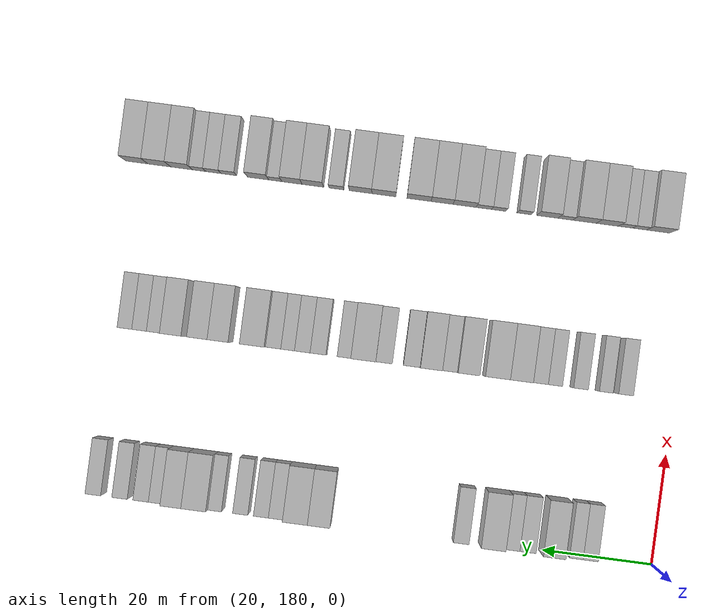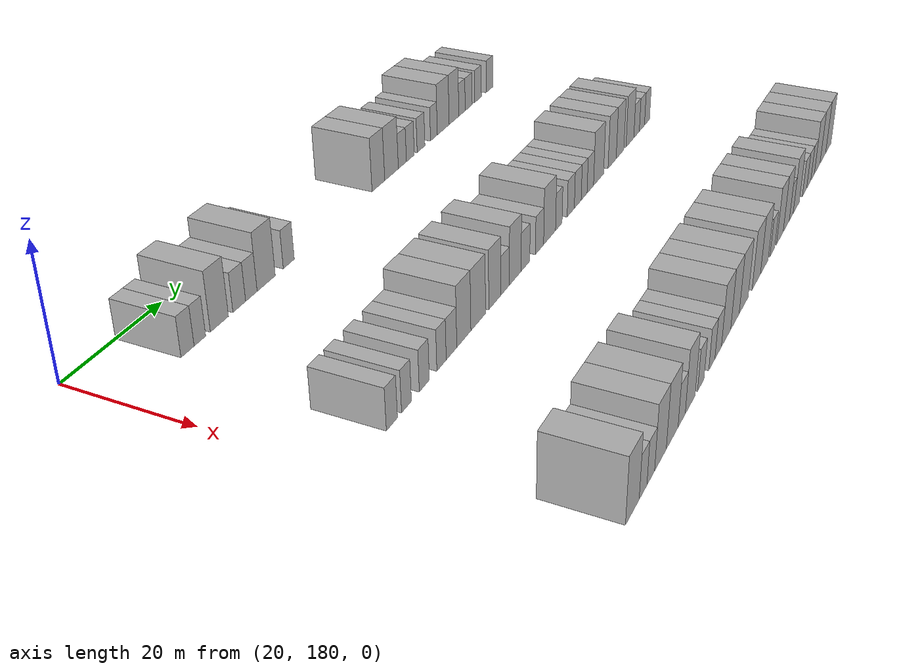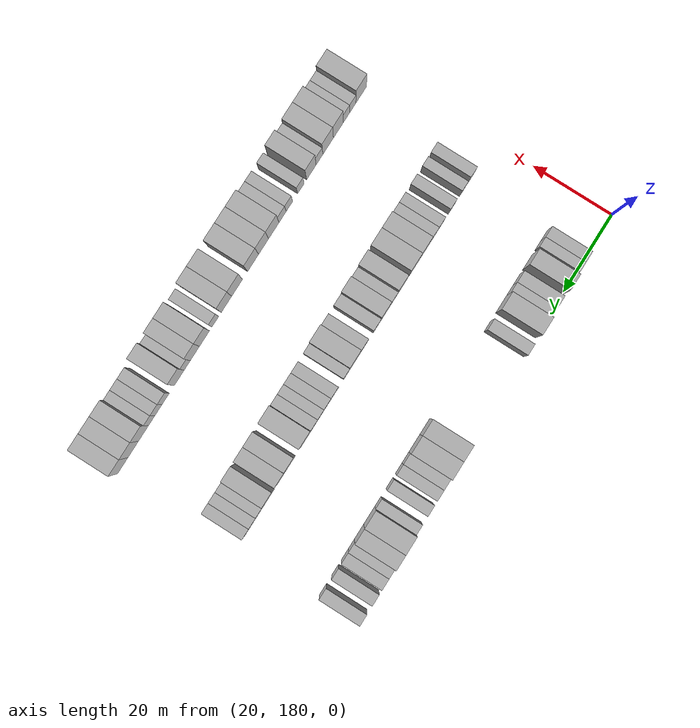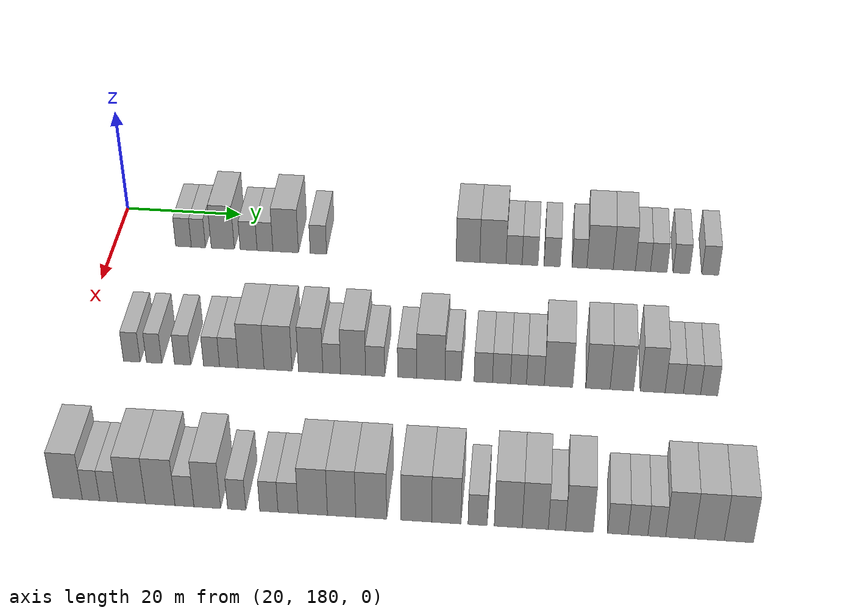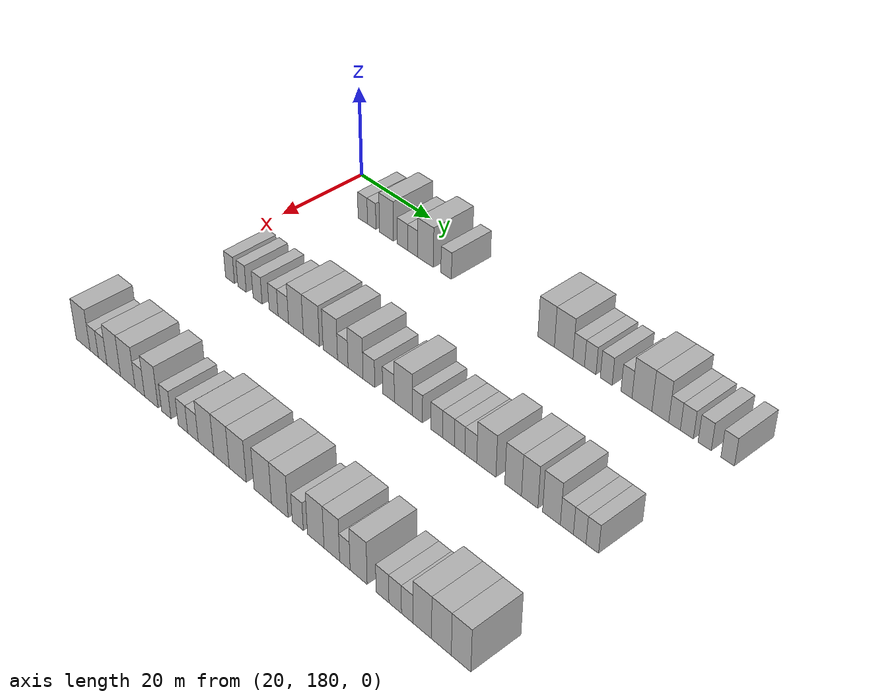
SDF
<sdf version="1.6">
 <world name="default">
  <model name="building_123">
   <static>1</static>
   <pose>25.0000 191.8621 0 0.000000 0.000000 0.000000</pose>
   <link name="link">
    <pose>0 0 3.00 0 0 0</pose>
    <collision name="collision"><geometry><box><size>10.0000 2.7082 6.0000</size></box></geometry></collision>
    <visual name="visual">
     <cast_shadows>0</cast_shadows>
     <geometry><box><size>10.0000 2.7082 6.0000</size></box></geometry>
     <material>
      <script>
       <uri>model://HANNAS_wall/materials/scripts</uri>
       <uri>model://HANNAS_wall/materials/textures</uri>
       <name>vrc/HANNAS_wall</name>
      </script>
     </material>
    </visual>
   </link>
  </model>
  <model name="building_124">
   <static>1</static>
   <pose>25.0000 194.4350 0 0.000000 0.000000 0.000000</pose>
   <link name="link">
    <pose>0 0 3.00 0 0 0</pose>
    <collision name="collision"><geometry><box><size>10.0000 2.4375 6.0000</size></box></geometry></collision>
    <visual name="visual">
     <cast_shadows>0</cast_shadows>
     <geometry><box><size>10.0000 2.4375 6.0000</size></box></geometry>
     <material>
      <script>
       <uri>model://HANNAS_wall/materials/scripts</uri>
       <uri>model://HANNAS_wall/materials/textures</uri>
       <name>vrc/HANNAS_wall</name>
      </script>
     </material>
    </visual>
   </link>
  </model>
  <model name="building_125">
   <static>1</static>
   <pose>25.0000 198.6435 0 0.000000 0.000000 0.000000</pose>
   <link name="link">
    <pose>0 0 4.50 0 0 0</pose>
    <collision name="collision"><geometry><box><size>10.0000 3.9794 9.0000</size></box></geometry></collision>
    <visual name="visual">
     <cast_shadows>0</cast_shadows>
     <geometry><box><size>10.0000 3.9794 9.0000</size></box></geometry>
     <material>
      <script>
       <uri>model://HANNAS_wall/materials/scripts</uri>
       <uri>model://HANNAS_wall/materials/textures</uri>
       <name>vrc/HANNAS_wall</name>
      </script>
     </material>
    </visual>
   </link>
  </model>
  <model name="building_126">
   <static>1</static>
   <pose>25.0000 203.0885 0 0.000000 0.000000 0.000000</pose>
   <link name="link">
    <pose>0 0 3.00 0 0 0</pose>
    <collision name="collision"><geometry><box><size>10.0000 2.9107 6.0000</size></box></geometry></collision>
    <visual name="visual">
     <cast_shadows>0</cast_shadows>
     <geometry><box><size>10.0000 2.9107 6.0000</size></box></geometry>
     <material>
      <script>
       <uri>model://HANNAS_wall/materials/scripts</uri>
       <uri>model://HANNAS_wall/materials/textures</uri>
       <name>vrc/HANNAS_wall</name>
      </script>
     </material>
    </visual>
   </link>
  </model>
  <model name="building_127">
   <static>1</static>
   <pose>25.0000 205.8991 0 0.000000 0.000000 0.000000</pose>
   <link name="link">
    <pose>0 0 3.00 0 0 0</pose>
    <collision name="collision"><geometry><box><size>10.0000 2.7104 6.0000</size></box></geometry></collision>
    <visual name="visual">
     <cast_shadows>0</cast_shadows>
     <geometry><box><size>10.0000 2.7104 6.0000</size></box></geometry>
     <material>
      <script>
       <uri>model://HANNAS_wall/materials/scripts</uri>
       <uri>model://HANNAS_wall/materials/textures</uri>
       <name>vrc/HANNAS_wall</name>
      </script>
     </material>
    </visual>
   </link>
  </model>
  <model name="building_128">
   <static>1</static>
   <pose>25.0000 209.4507 0 0.000000 0.000000 0.000000</pose>
   <link name="link">
    <pose>0 0 4.50 0 0 0</pose>
    <collision name="collision"><geometry><box><size>10.0000 4.3928 9.0000</size></box></geometry></collision>
    <visual name="visual">
     <cast_shadows>0</cast_shadows>
     <geometry><box><size>10.0000 4.3928 9.0000</size></box></geometry>
     <material>
      <script>
       <uri>model://HANNAS_wall/materials/scripts</uri>
       <uri>model://HANNAS_wall/materials/textures</uri>
       <name>vrc/HANNAS_wall</name>
      </script>
     </material>
    </visual>
   </link>
  </model>
  <model name="building_129">
   <static>1</static>
   <pose>25.0000 215.0485 0 0.000000 0.000000 0.000000</pose>
   <link name="link">
    <pose>0 0 3.00 0 0 0</pose>
    <collision name="collision"><geometry><box><size>10.0000 2.8028 6.0000</size></box></geometry></collision>
    <visual name="visual">
     <cast_shadows>0</cast_shadows>
     <geometry><box><size>10.0000 2.8028 6.0000</size></box></geometry>
     <material>
      <script>
       <uri>model://HANNAS_wall/materials/scripts</uri>
       <uri>model://HANNAS_wall/materials/textures</uri>
       <name>vrc/HANNAS_wall</name>
      </script>
     </material>
    </visual>
   </link>
  </model>
  <model name="building_130">
   <static>1</static>
   <pose>25.0000 240.4593 0 0.000000 0.000000 0.000000</pose>
   <link name="link">
    <pose>0 0 4.50 0 0 0</pose>
    <collision name="collision"><geometry><box><size>10.0000 4.0063 9.0000</size></box></geometry></collision>
    <visual name="visual">
     <cast_shadows>0</cast_shadows>
     <geometry><box><size>10.0000 4.0063 9.0000</size></box></geometry>
     <material>
      <script>
       <uri>model://HANNAS_wall/materials/scripts</uri>
       <uri>model://HANNAS_wall/materials/textures</uri>
       <name>vrc/HANNAS_wall</name>
      </script>
     </material>
    </visual>
   </link>
  </model>
  <model name="building_131">
   <static>1</static>
   <pose>25.0000 244.6759 0 0.000000 0.000000 0.000000</pose>
   <link name="link">
    <pose>0 0 4.50 0 0 0</pose>
    <collision name="collision"><geometry><box><size>10.0000 4.4270 9.0000</size></box></geometry></collision>
    <visual name="visual">
     <cast_shadows>0</cast_shadows>
     <geometry><box><size>10.0000 4.4270 9.0000</size></box></geometry>
     <material>
      <script>
       <uri>model://HANNAS_wall/materials/scripts</uri>
       <uri>model://HANNAS_wall/materials/textures</uri>
       <name>vrc/HANNAS_wall</name>
      </script>
     </material>
    </visual>
   </link>
  </model>
  <model name="building_132">
   <static>1</static>
   <pose>25.0000 248.2359 0 0.000000 0.000000 0.000000</pose>
   <link name="link">
    <pose>0 0 3.00 0 0 0</pose>
    <collision name="collision"><geometry><box><size>10.0000 2.6929 6.0000</size></box></geometry></collision>
    <visual name="visual">
     <cast_shadows>0</cast_shadows>
     <geometry><box><size>10.0000 2.6929 6.0000</size></box></geometry>
     <material>
      <script>
       <uri>model://HANNAS_wall/materials/scripts</uri>
       <uri>model://HANNAS_wall/materials/textures</uri>
       <name>vrc/HANNAS_wall</name>
      </script>
     </material>
    </visual>
   </link>
  </model>
  <model name="building_133">
   <static>1</static>
   <pose>25.0000 250.9213 0 0.000000 0.000000 0.000000</pose>
   <link name="link">
    <pose>0 0 3.00 0 0 0</pose>
    <collision name="collision"><geometry><box><size>10.0000 2.6780 6.0000</size></box></geometry></collision>
    <visual name="visual">
     <cast_shadows>0</cast_shadows>
     <geometry><box><size>10.0000 2.6780 6.0000</size></box></geometry>
     <material>
      <script>
       <uri>model://HANNAS_wall/materials/scripts</uri>
       <uri>model://HANNAS_wall/materials/textures</uri>
       <name>vrc/HANNAS_wall</name>
      </script>
     </material>
    </visual>
   </link>
  </model>
  <model name="building_134">
   <static>1</static>
   <pose>25.0000 254.6172 0 0.000000 0.000000 0.000000</pose>
   <link name="link">
    <pose>0 0 3.00 0 0 0</pose>
    <collision name="collision"><geometry><box><size>10.0000 2.7138 6.0000</size></box></geometry></collision>
    <visual name="visual">
     <cast_shadows>0</cast_shadows>
     <geometry><box><size>10.0000 2.7138 6.0000</size></box></geometry>
     <material>
      <script>
       <uri>model://HANNAS_wall/materials/scripts</uri>
       <uri>model://HANNAS_wall/materials/textures</uri>
       <name>vrc/HANNAS_wall</name>
      </script>
     </material>
    </visual>
   </link>
  </model>
  <model name="building_135">
   <static>1</static>
   <pose>25.0000 259.2139 0 0.000000 0.000000 0.000000</pose>
   <link name="link">
    <pose>0 0 3.00 0 0 0</pose>
    <collision name="collision"><geometry><box><size>10.0000 2.4797 6.0000</size></box></geometry></collision>
    <visual name="visual">
     <cast_shadows>0</cast_shadows>
     <geometry><box><size>10.0000 2.4797 6.0000</size></box></geometry>
     <material>
      <script>
       <uri>model://HANNAS_wall/materials/scripts</uri>
       <uri>model://HANNAS_wall/materials/textures</uri>
       <name>vrc/HANNAS_wall</name>
      </script>
     </material>
    </visual>
   </link>
  </model>
  <model name="building_136">
   <static>1</static>
   <pose>25.0000 262.6553 0 0.000000 0.000000 0.000000</pose>
   <link name="link">
    <pose>0 0 4.50 0 0 0</pose>
    <collision name="collision"><geometry><box><size>10.0000 4.4030 9.0000</size></box></geometry></collision>
    <visual name="visual">
     <cast_shadows>0</cast_shadows>
     <geometry><box><size>10.0000 4.4030 9.0000</size></box></geometry>
     <material>
      <script>
       <uri>model://HANNAS_wall/materials/scripts</uri>
       <uri>model://HANNAS_wall/materials/textures</uri>
       <name>vrc/HANNAS_wall</name>
      </script>
     </material>
    </visual>
   </link>
  </model>
  <model name="building_137">
   <static>1</static>
   <pose>25.0000 266.7022 0 0.000000 0.000000 0.000000</pose>
   <link name="link">
    <pose>0 0 4.50 0 0 0</pose>
    <collision name="collision"><geometry><box><size>10.0000 3.6909 9.0000</size></box></geometry></collision>
    <visual name="visual">
     <cast_shadows>0</cast_shadows>
     <geometry><box><size>10.0000 3.6909 9.0000</size></box></geometry>
     <material>
      <script>
       <uri>model://HANNAS_wall/materials/scripts</uri>
       <uri>model://HANNAS_wall/materials/textures</uri>
       <name>vrc/HANNAS_wall</name>
      </script>
     </material>
    </visual>
   </link>
  </model>
  <model name="building_138">
   <static>1</static>
   <pose>25.0000 269.8038 0 0.000000 0.000000 0.000000</pose>
   <link name="link">
    <pose>0 0 3.00 0 0 0</pose>
    <collision name="collision"><geometry><box><size>10.0000 2.5121 6.0000</size></box></geometry></collision>
    <visual name="visual">
     <cast_shadows>0</cast_shadows>
     <geometry><box><size>10.0000 2.5121 6.0000</size></box></geometry>
     <material>
      <script>
       <uri>model://HANNAS_wall/materials/scripts</uri>
       <uri>model://HANNAS_wall/materials/textures</uri>
       <name>vrc/HANNAS_wall</name>
      </script>
     </material>
    </visual>
   </link>
  </model>
  <model name="building_139">
   <static>1</static>
   <pose>25.0000 272.4463 0 0.000000 0.000000 0.000000</pose>
   <link name="link">
    <pose>0 0 3.00 0 0 0</pose>
    <collision name="collision"><geometry><box><size>10.0000 2.7729 6.0000</size></box></geometry></collision>
    <visual name="visual">
     <cast_shadows>0</cast_shadows>
     <geometry><box><size>10.0000 2.7729 6.0000</size></box></geometry>
     <material>
      <script>
       <uri>model://HANNAS_wall/materials/scripts</uri>
       <uri>model://HANNAS_wall/materials/textures</uri>
       <name>vrc/HANNAS_wall</name>
      </script>
     </material>
    </visual>
   </link>
  </model>
  <model name="building_140">
   <static>1</static>
   <pose>25.0000 276.2145 0 0.000000 0.000000 0.000000</pose>
   <link name="link">
    <pose>0 0 3.00 0 0 0</pose>
    <collision name="collision"><geometry><box><size>10.0000 2.7635 6.0000</size></box></geometry></collision>
    <visual name="visual">
     <cast_shadows>0</cast_shadows>
     <geometry><box><size>10.0000 2.7635 6.0000</size></box></geometry>
     <material>
      <script>
       <uri>model://HANNAS_wall/materials/scripts</uri>
       <uri>model://HANNAS_wall/materials/textures</uri>
       <name>vrc/HANNAS_wall</name>
      </script>
     </material>
    </visual>
   </link>
  </model>
  <model name="building_141">
   <static>1</static>
   <pose>25.0000 280.9940 0 0.000000 0.000000 0.000000</pose>
   <link name="link">
    <pose>0 0 3.00 0 0 0</pose>
    <collision name="collision"><geometry><box><size>10.0000 2.7955 6.0000</size></box></geometry></collision>
    <visual name="visual">
     <cast_shadows>0</cast_shadows>
     <geometry><box><size>10.0000 2.7955 6.0000</size></box></geometry>
     <material>
      <script>
       <uri>model://HANNAS_wall/materials/scripts</uri>
       <uri>model://HANNAS_wall/materials/textures</uri>
       <name>vrc/HANNAS_wall</name>
      </script>
     </material>
    </visual>
   </link>
  </model>
  <model name="building_260">
   <static>1</static>
   <pose>55.0000 189.5076 0 0.000000 0.000000 0.000000</pose>
   <link name="link">
    <pose>0 0 3.00 0 0 0</pose>
    <collision name="collision"><geometry><box><size>10.0000 2.6526 6.0000</size></box></geometry></collision>
    <visual name="visual">
     <cast_shadows>0</cast_shadows>
     <geometry><box><size>10.0000 2.6526 6.0000</size></box></geometry>
     <material>
      <script>
       <uri>model://HANNAS_wall/materials/scripts</uri>
       <uri>model://HANNAS_wall/materials/textures</uri>
       <name>vrc/HANNAS_wall</name>
      </script>
     </material>
    </visual>
   </link>
  </model>
  <model name="building_261">
   <static>1</static>
   <pose>55.0000 193.0554 0 0.000000 0.000000 0.000000</pose>
   <link name="link">
    <pose>0 0 3.00 0 0 0</pose>
    <collision name="collision"><geometry><box><size>10.0000 2.4431 6.0000</size></box></geometry></collision>
    <visual name="visual">
     <cast_shadows>0</cast_shadows>
     <geometry><box><size>10.0000 2.4431 6.0000</size></box></geometry>
     <material>
      <script>
       <uri>model://HANNAS_wall/materials/scripts</uri>
       <uri>model://HANNAS_wall/materials/textures</uri>
       <name>vrc/HANNAS_wall</name>
      </script>
     </material>
    </visual>
   </link>
  </model>
  <model name="building_262">
   <static>1</static>
   <pose>55.0000 197.5815 0 0.000000 0.000000 0.000000</pose>
   <link name="link">
    <pose>0 0 3.00 0 0 0</pose>
    <collision name="collision"><geometry><box><size>10.0000 2.6090 6.0000</size></box></geometry></collision>
    <visual name="visual">
     <cast_shadows>0</cast_shadows>
     <geometry><box><size>10.0000 2.6090 6.0000</size></box></geometry>
     <material>
      <script>
       <uri>model://HANNAS_wall/materials/scripts</uri>
       <uri>model://HANNAS_wall/materials/textures</uri>
       <name>vrc/HANNAS_wall</name>
      </script>
     </material>
    </visual>
   </link>
  </model>
  <model name="building_263">
   <static>1</static>
   <pose>55.0000 202.1566 0 0.000000 0.000000 0.000000</pose>
   <link name="link">
    <pose>0 0 3.00 0 0 0</pose>
    <collision name="collision"><geometry><box><size>10.0000 2.5413 6.0000</size></box></geometry></collision>
    <visual name="visual">
     <cast_shadows>0</cast_shadows>
     <geometry><box><size>10.0000 2.5413 6.0000</size></box></geometry>
     <material>
      <script>
       <uri>model://HANNAS_wall/materials/scripts</uri>
       <uri>model://HANNAS_wall/materials/textures</uri>
       <name>vrc/HANNAS_wall</name>
      </script>
     </material>
    </visual>
   </link>
  </model>
  <model name="building_264">
   <static>1</static>
   <pose>55.0000 204.9034 0 0.000000 0.000000 0.000000</pose>
   <link name="link">
    <pose>0 0 3.00 0 0 0</pose>
    <collision name="collision"><geometry><box><size>10.0000 2.9522 6.0000</size></box></geometry></collision>
    <visual name="visual">
     <cast_shadows>0</cast_shadows>
     <geometry><box><size>10.0000 2.9522 6.0000</size></box></geometry>
     <material>
      <script>
       <uri>model://HANNAS_wall/materials/scripts</uri>
       <uri>model://HANNAS_wall/materials/textures</uri>
       <name>vrc/HANNAS_wall</name>
      </script>
     </material>
    </visual>
   </link>
  </model>
  <model name="building_265">
   <static>1</static>
   <pose>55.0000 208.4139 0 0.000000 0.000000 0.000000</pose>
   <link name="link">
    <pose>0 0 4.50 0 0 0</pose>
    <collision name="collision"><geometry><box><size>10.0000 4.0689 9.0000</size></box></geometry></collision>
    <visual name="visual">
     <cast_shadows>0</cast_shadows>
     <geometry><box><size>10.0000 4.0689 9.0000</size></box></geometry>
     <material>
      <script>
       <uri>model://HANNAS_wall/materials/scripts</uri>
       <uri>model://HANNAS_wall/materials/textures</uri>
       <name>vrc/HANNAS_wall</name>
      </script>
     </material>
    </visual>
   </link>
  </model>
  <model name="building_266">
   <static>1</static>
   <pose>55.0000 212.6522 0 0.000000 0.000000 0.000000</pose>
   <link name="link">
    <pose>0 0 4.50 0 0 0</pose>
    <collision name="collision"><geometry><box><size>10.0000 4.4077 9.0000</size></box></geometry></collision>
    <visual name="visual">
     <cast_shadows>0</cast_shadows>
     <geometry><box><size>10.0000 4.4077 9.0000</size></box></geometry>
     <material>
      <script>
       <uri>model://HANNAS_wall/materials/scripts</uri>
       <uri>model://HANNAS_wall/materials/textures</uri>
       <name>vrc/HANNAS_wall</name>
      </script>
     </material>
    </visual>
   </link>
  </model>
  <model name="building_267">
   <static>1</static>
   <pose>55.0000 217.7766 0 0.000000 0.000000 0.000000</pose>
   <link name="link">
    <pose>0 0 4.50 0 0 0</pose>
    <collision name="collision"><geometry><box><size>10.0000 3.8411 9.0000</size></box></geometry></collision>
    <visual name="visual">
     <cast_shadows>0</cast_shadows>
     <geometry><box><size>10.0000 3.8411 9.0000</size></box></geometry>
     <material>
      <script>
       <uri>model://HANNAS_wall/materials/scripts</uri>
       <uri>model://HANNAS_wall/materials/textures</uri>
       <name>vrc/HANNAS_wall</name>
      </script>
     </material>
    </visual>
   </link>
  </model>
  <model name="building_268">
   <static>1</static>
   <pose>55.0000 221.0846 0 0.000000 0.000000 0.000000</pose>
   <link name="link">
    <pose>0 0 3.00 0 0 0</pose>
    <collision name="collision"><geometry><box><size>10.0000 2.7748 6.0000</size></box></geometry></collision>
    <visual name="visual">
     <cast_shadows>0</cast_shadows>
     <geometry><box><size>10.0000 2.7748 6.0000</size></box></geometry>
     <material>
      <script>
       <uri>model://HANNAS_wall/materials/scripts</uri>
       <uri>model://HANNAS_wall/materials/textures</uri>
       <name>vrc/HANNAS_wall</name>
      </script>
     </material>
    </visual>
   </link>
  </model>
  <model name="building_269">
   <static>1</static>
   <pose>55.0000 224.4257 0 0.000000 0.000000 0.000000</pose>
   <link name="link">
    <pose>0 0 4.50 0 0 0</pose>
    <collision name="collision"><geometry><box><size>10.0000 3.9074 9.0000</size></box></geometry></collision>
    <visual name="visual">
     <cast_shadows>0</cast_shadows>
     <geometry><box><size>10.0000 3.9074 9.0000</size></box></geometry>
     <material>
      <script>
       <uri>model://HANNAS_wall/materials/scripts</uri>
       <uri>model://HANNAS_wall/materials/textures</uri>
       <name>vrc/HANNAS_wall</name>
      </script>
     </material>
    </visual>
   </link>
  </model>
  <model name="building_270">
   <static>1</static>
   <pose>55.0000 227.8706 0 0.000000 0.000000 0.000000</pose>
   <link name="link">
    <pose>0 0 3.00 0 0 0</pose>
    <collision name="collision"><geometry><box><size>10.0000 2.9824 6.0000</size></box></geometry></collision>
    <visual name="visual">
     <cast_shadows>0</cast_shadows>
     <geometry><box><size>10.0000 2.9824 6.0000</size></box></geometry>
     <material>
      <script>
       <uri>model://HANNAS_wall/materials/scripts</uri>
       <uri>model://HANNAS_wall/materials/textures</uri>
       <name>vrc/HANNAS_wall</name>
      </script>
     </material>
    </visual>
   </link>
  </model>
  <model name="building_271">
   <static>1</static>
   <pose>55.0000 232.8362 0 0.000000 0.000000 0.000000</pose>
   <link name="link">
    <pose>0 0 3.00 0 0 0</pose>
    <collision name="collision"><geometry><box><size>10.0000 2.9488 6.0000</size></box></geometry></collision>
    <visual name="visual">
     <cast_shadows>0</cast_shadows>
     <geometry><box><size>10.0000 2.9488 6.0000</size></box></geometry>
     <material>
      <script>
       <uri>model://HANNAS_wall/materials/scripts</uri>
       <uri>model://HANNAS_wall/materials/textures</uri>
       <name>vrc/HANNAS_wall</name>
      </script>
     </material>
    </visual>
   </link>
  </model>
  <model name="building_272">
   <static>1</static>
   <pose>55.0000 236.5269 0 0.000000 0.000000 0.000000</pose>
   <link name="link">
    <pose>0 0 4.50 0 0 0</pose>
    <collision name="collision"><geometry><box><size>10.0000 4.4325 9.0000</size></box></geometry></collision>
    <visual name="visual">
     <cast_shadows>0</cast_shadows>
     <geometry><box><size>10.0000 4.4325 9.0000</size></box></geometry>
     <material>
      <script>
       <uri>model://HANNAS_wall/materials/scripts</uri>
       <uri>model://HANNAS_wall/materials/textures</uri>
       <name>vrc/HANNAS_wall</name>
      </script>
     </material>
    </visual>
   </link>
  </model>
  <model name="building_273">
   <static>1</static>
   <pose>55.0000 239.9940 0 0.000000 0.000000 0.000000</pose>
   <link name="link">
    <pose>0 0 3.00 0 0 0</pose>
    <collision name="collision"><geometry><box><size>10.0000 2.5018 6.0000</size></box></geometry></collision>
    <visual name="visual">
     <cast_shadows>0</cast_shadows>
     <geometry><box><size>10.0000 2.5018 6.0000</size></box></geometry>
     <material>
      <script>
       <uri>model://HANNAS_wall/materials/scripts</uri>
       <uri>model://HANNAS_wall/materials/textures</uri>
       <name>vrc/HANNAS_wall</name>
      </script>
     </material>
    </visual>
   </link>
  </model>
  <model name="building_274">
   <static>1</static>
   <pose>55.0000 244.6682 0 0.000000 0.000000 0.000000</pose>
   <link name="link">
    <pose>0 0 3.00 0 0 0</pose>
    <collision name="collision"><geometry><box><size>10.0000 2.8466 6.0000</size></box></geometry></collision>
    <visual name="visual">
     <cast_shadows>0</cast_shadows>
     <geometry><box><size>10.0000 2.8466 6.0000</size></box></geometry>
     <material>
      <script>
       <uri>model://HANNAS_wall/materials/scripts</uri>
       <uri>model://HANNAS_wall/materials/textures</uri>
       <name>vrc/HANNAS_wall</name>
      </script>
     </material>
    </visual>
   </link>
  </model>
  <model name="building_275">
   <static>1</static>
   <pose>55.0000 247.4838 0 0.000000 0.000000 0.000000</pose>
   <link name="link">
    <pose>0 0 3.00 0 0 0</pose>
    <collision name="collision"><geometry><box><size>10.0000 2.7846 6.0000</size></box></geometry></collision>
    <visual name="visual">
     <cast_shadows>0</cast_shadows>
     <geometry><box><size>10.0000 2.7846 6.0000</size></box></geometry>
     <material>
      <script>
       <uri>model://HANNAS_wall/materials/scripts</uri>
       <uri>model://HANNAS_wall/materials/textures</uri>
       <name>vrc/HANNAS_wall</name>
      </script>
     </material>
    </visual>
   </link>
  </model>
  <model name="building_276">
   <static>1</static>
   <pose>55.0000 250.1031 0 0.000000 0.000000 0.000000</pose>
   <link name="link">
    <pose>0 0 3.00 0 0 0</pose>
    <collision name="collision"><geometry><box><size>10.0000 2.4539 6.0000</size></box></geometry></collision>
    <visual name="visual">
     <cast_shadows>0</cast_shadows>
     <geometry><box><size>10.0000 2.4539 6.0000</size></box></geometry>
     <material>
      <script>
       <uri>model://HANNAS_wall/materials/scripts</uri>
       <uri>model://HANNAS_wall/materials/textures</uri>
       <name>vrc/HANNAS_wall</name>
      </script>
     </material>
    </visual>
   </link>
  </model>
  <model name="building_277">
   <static>1</static>
   <pose>55.0000 252.7054 0 0.000000 0.000000 0.000000</pose>
   <link name="link">
    <pose>0 0 3.00 0 0 0</pose>
    <collision name="collision"><geometry><box><size>10.0000 2.7507 6.0000</size></box></geometry></collision>
    <visual name="visual">
     <cast_shadows>0</cast_shadows>
     <geometry><box><size>10.0000 2.7507 6.0000</size></box></geometry>
     <material>
      <script>
       <uri>model://HANNAS_wall/materials/scripts</uri>
       <uri>model://HANNAS_wall/materials/textures</uri>
       <name>vrc/HANNAS_wall</name>
      </script>
     </material>
    </visual>
   </link>
  </model>
  <model name="building_278">
   <static>1</static>
   <pose>55.0000 256.2722 0 0.000000 0.000000 0.000000</pose>
   <link name="link">
    <pose>0 0 4.50 0 0 0</pose>
    <collision name="collision"><geometry><box><size>10.0000 4.3830 9.0000</size></box></geometry></collision>
    <visual name="visual">
     <cast_shadows>0</cast_shadows>
     <geometry><box><size>10.0000 4.3830 9.0000</size></box></geometry>
     <material>
      <script>
       <uri>model://HANNAS_wall/materials/scripts</uri>
       <uri>model://HANNAS_wall/materials/textures</uri>
       <name>vrc/HANNAS_wall</name>
      </script>
     </material>
    </visual>
   </link>
  </model>
  <model name="building_279">
   <static>1</static>
   <pose>55.0000 262.3244 0 0.000000 0.000000 0.000000</pose>
   <link name="link">
    <pose>0 0 4.50 0 0 0</pose>
    <collision name="collision"><geometry><box><size>10.0000 3.7214 9.0000</size></box></geometry></collision>
    <visual name="visual">
     <cast_shadows>0</cast_shadows>
     <geometry><box><size>10.0000 3.7214 9.0000</size></box></geometry>
     <material>
      <script>
       <uri>model://HANNAS_wall/materials/scripts</uri>
       <uri>model://HANNAS_wall/materials/textures</uri>
       <name>vrc/HANNAS_wall</name>
      </script>
     </material>
    </visual>
   </link>
  </model>
  <model name="building_280">
   <static>1</static>
   <pose>55.0000 265.9912 0 0.000000 0.000000 0.000000</pose>
   <link name="link">
    <pose>0 0 4.50 0 0 0</pose>
    <collision name="collision"><geometry><box><size>10.0000 3.6121 9.0000</size></box></geometry></collision>
    <visual name="visual">
     <cast_shadows>0</cast_shadows>
     <geometry><box><size>10.0000 3.6121 9.0000</size></box></geometry>
     <material>
      <script>
       <uri>model://HANNAS_wall/materials/scripts</uri>
       <uri>model://HANNAS_wall/materials/textures</uri>
       <name>vrc/HANNAS_wall</name>
      </script>
     </material>
    </visual>
   </link>
  </model>
  <model name="building_281">
   <static>1</static>
   <pose>55.0000 270.7059 0 0.000000 0.000000 0.000000</pose>
   <link name="link">
    <pose>0 0 4.50 0 0 0</pose>
    <collision name="collision"><geometry><box><size>10.0000 3.8172 9.0000</size></box></geometry></collision>
    <visual name="visual">
     <cast_shadows>0</cast_shadows>
     <geometry><box><size>10.0000 3.8172 9.0000</size></box></geometry>
     <material>
      <script>
       <uri>model://HANNAS_wall/materials/scripts</uri>
       <uri>model://HANNAS_wall/materials/textures</uri>
       <name>vrc/HANNAS_wall</name>
      </script>
     </material>
    </visual>
   </link>
  </model>
  <model name="building_282">
   <static>1</static>
   <pose>55.0000 273.9977 0 0.000000 0.000000 0.000000</pose>
   <link name="link">
    <pose>0 0 3.00 0 0 0</pose>
    <collision name="collision"><geometry><box><size>10.0000 2.7665 6.0000</size></box></geometry></collision>
    <visual name="visual">
     <cast_shadows>0</cast_shadows>
     <geometry><box><size>10.0000 2.7665 6.0000</size></box></geometry>
     <material>
      <script>
       <uri>model://HANNAS_wall/materials/scripts</uri>
       <uri>model://HANNAS_wall/materials/textures</uri>
       <name>vrc/HANNAS_wall</name>
      </script>
     </material>
    </visual>
   </link>
  </model>
  <model name="building_283">
   <static>1</static>
   <pose>55.0000 276.6937 0 0.000000 0.000000 0.000000</pose>
   <link name="link">
    <pose>0 0 3.00 0 0 0</pose>
    <collision name="collision"><geometry><box><size>10.0000 2.6254 6.0000</size></box></geometry></collision>
    <visual name="visual">
     <cast_shadows>0</cast_shadows>
     <geometry><box><size>10.0000 2.6254 6.0000</size></box></geometry>
     <material>
      <script>
       <uri>model://HANNAS_wall/materials/scripts</uri>
       <uri>model://HANNAS_wall/materials/textures</uri>
       <name>vrc/HANNAS_wall</name>
      </script>
     </material>
    </visual>
   </link>
  </model>
  <model name="building_284">
   <static>1</static>
   <pose>55.0000 279.3157 0 0.000000 0.000000 0.000000</pose>
   <link name="link">
    <pose>0 0 3.00 0 0 0</pose>
    <collision name="collision"><geometry><box><size>10.0000 2.6185 6.0000</size></box></geometry></collision>
    <visual name="visual">
     <cast_shadows>0</cast_shadows>
     <geometry><box><size>10.0000 2.6185 6.0000</size></box></geometry>
     <material>
      <script>
       <uri>model://HANNAS_wall/materials/scripts</uri>
       <uri>model://HANNAS_wall/materials/textures</uri>
       <name>vrc/HANNAS_wall</name>
      </script>
     </material>
    </visual>
   </link>
  </model>
  <model name="building_395">
   <static>1</static>
   <pose>85.0000 186.7692 0 0.000000 0.000000 0.000000</pose>
   <link name="link">
    <pose>0 0 4.50 0 0 0</pose>
    <collision name="collision"><geometry><box><size>10.0000 4.2894 9.0000</size></box></geometry></collision>
    <visual name="visual">
     <cast_shadows>0</cast_shadows>
     <geometry><box><size>10.0000 4.2894 9.0000</size></box></geometry>
     <material>
      <script>
       <uri>model://HANNAS_wall/materials/scripts</uri>
       <uri>model://HANNAS_wall/materials/textures</uri>
       <name>vrc/HANNAS_wall</name>
      </script>
     </material>
    </visual>
   </link>
  </model>
  <model name="building_396">
   <static>1</static>
   <pose>85.0000 190.1768 0 0.000000 0.000000 0.000000</pose>
   <link name="link">
    <pose>0 0 3.00 0 0 0</pose>
    <collision name="collision"><geometry><box><size>10.0000 2.5259 6.0000</size></box></geometry></collision>
    <visual name="visual">
     <cast_shadows>0</cast_shadows>
     <geometry><box><size>10.0000 2.5259 6.0000</size></box></geometry>
     <material>
      <script>
       <uri>model://HANNAS_wall/materials/scripts</uri>
       <uri>model://HANNAS_wall/materials/textures</uri>
       <name>vrc/HANNAS_wall</name>
      </script>
     </material>
    </visual>
   </link>
  </model>
  <model name="building_397">
   <static>1</static>
   <pose>85.0000 192.7282 0 0.000000 0.000000 0.000000</pose>
   <link name="link">
    <pose>0 0 3.00 0 0 0</pose>
    <collision name="collision"><geometry><box><size>10.0000 2.5768 6.0000</size></box></geometry></collision>
    <visual name="visual">
     <cast_shadows>0</cast_shadows>
     <geometry><box><size>10.0000 2.5768 6.0000</size></box></geometry>
     <material>
      <script>
       <uri>model://HANNAS_wall/materials/scripts</uri>
       <uri>model://HANNAS_wall/materials/textures</uri>
       <name>vrc/HANNAS_wall</name>
      </script>
     </material>
    </visual>
   </link>
  </model>
  <model name="building_398">
   <static>1</static>
   <pose>85.0000 196.0456 0 0.000000 0.000000 0.000000</pose>
   <link name="link">
    <pose>0 0 4.50 0 0 0</pose>
    <collision name="collision"><geometry><box><size>10.0000 4.0581 9.0000</size></box></geometry></collision>
    <visual name="visual">
     <cast_shadows>0</cast_shadows>
     <geometry><box><size>10.0000 4.0581 9.0000</size></box></geometry>
     <material>
      <script>
       <uri>model://HANNAS_wall/materials/scripts</uri>
       <uri>model://HANNAS_wall/materials/textures</uri>
       <name>vrc/HANNAS_wall</name>
      </script>
     </material>
    </visual>
   </link>
  </model>
  <model name="building_399">
   <static>1</static>
   <pose>85.0000 200.2080 0 0.000000 0.000000 0.000000</pose>
   <link name="link">
    <pose>0 0 4.50 0 0 0</pose>
    <collision name="collision"><geometry><box><size>10.0000 4.2667 9.0000</size></box></geometry></collision>
    <visual name="visual">
     <cast_shadows>0</cast_shadows>
     <geometry><box><size>10.0000 4.2667 9.0000</size></box></geometry>
     <material>
      <script>
       <uri>model://HANNAS_wall/materials/scripts</uri>
       <uri>model://HANNAS_wall/materials/textures</uri>
       <name>vrc/HANNAS_wall</name>
      </script>
     </material>
    </visual>
   </link>
  </model>
  <model name="building_400">
   <static>1</static>
   <pose>85.0000 203.7066 0 0.000000 0.000000 0.000000</pose>
   <link name="link">
    <pose>0 0 3.00 0 0 0</pose>
    <collision name="collision"><geometry><box><size>10.0000 2.7306 6.0000</size></box></geometry></collision>
    <visual name="visual">
     <cast_shadows>0</cast_shadows>
     <geometry><box><size>10.0000 2.7306 6.0000</size></box></geometry>
     <material>
      <script>
       <uri>model://HANNAS_wall/materials/scripts</uri>
       <uri>model://HANNAS_wall/materials/textures</uri>
       <name>vrc/HANNAS_wall</name>
      </script>
     </material>
    </visual>
   </link>
  </model>
  <model name="building_401">
   <static>1</static>
   <pose>85.0000 206.9944 0 0.000000 0.000000 0.000000</pose>
   <link name="link">
    <pose>0 0 4.50 0 0 0</pose>
    <collision name="collision"><geometry><box><size>10.0000 3.8451 9.0000</size></box></geometry></collision>
    <visual name="visual">
     <cast_shadows>0</cast_shadows>
     <geometry><box><size>10.0000 3.8451 9.0000</size></box></geometry>
     <material>
      <script>
       <uri>model://HANNAS_wall/materials/scripts</uri>
       <uri>model://HANNAS_wall/materials/textures</uri>
       <name>vrc/HANNAS_wall</name>
      </script>
     </material>
    </visual>
   </link>
  </model>
  <model name="building_402">
   <static>1</static>
   <pose>85.0000 211.2260 0 0.000000 0.000000 0.000000</pose>
   <link name="link">
    <pose>0 0 3.00 0 0 0</pose>
    <collision name="collision"><geometry><box><size>10.0000 2.6180 6.0000</size></box></geometry></collision>
    <visual name="visual">
     <cast_shadows>0</cast_shadows>
     <geometry><box><size>10.0000 2.6180 6.0000</size></box></geometry>
     <material>
      <script>
       <uri>model://HANNAS_wall/materials/scripts</uri>
       <uri>model://HANNAS_wall/materials/textures</uri>
       <name>vrc/HANNAS_wall</name>
      </script>
     </material>
    </visual>
   </link>
  </model>
  <model name="building_403">
   <static>1</static>
   <pose>85.0000 215.8449 0 0.000000 0.000000 0.000000</pose>
   <link name="link">
    <pose>0 0 3.00 0 0 0</pose>
    <collision name="collision"><geometry><box><size>10.0000 2.6199 6.0000</size></box></geometry></collision>
    <visual name="visual">
     <cast_shadows>0</cast_shadows>
     <geometry><box><size>10.0000 2.6199 6.0000</size></box></geometry>
     <material>
      <script>
       <uri>model://HANNAS_wall/materials/scripts</uri>
       <uri>model://HANNAS_wall/materials/textures</uri>
       <name>vrc/HANNAS_wall</name>
      </script>
     </material>
    </visual>
   </link>
  </model>
  <model name="building_404">
   <static>1</static>
   <pose>85.0000 218.5913 0 0.000000 0.000000 0.000000</pose>
   <link name="link">
    <pose>0 0 3.00 0 0 0</pose>
    <collision name="collision"><geometry><box><size>10.0000 2.8728 6.0000</size></box></geometry></collision>
    <visual name="visual">
     <cast_shadows>0</cast_shadows>
     <geometry><box><size>10.0000 2.8728 6.0000</size></box></geometry>
     <material>
      <script>
       <uri>model://HANNAS_wall/materials/scripts</uri>
       <uri>model://HANNAS_wall/materials/textures</uri>
       <name>vrc/HANNAS_wall</name>
      </script>
     </material>
    </visual>
   </link>
  </model>
  <model name="building_405">
   <static>1</static>
   <pose>85.0000 222.1218 0 0.000000 0.000000 0.000000</pose>
   <link name="link">
    <pose>0 0 4.50 0 0 0</pose>
    <collision name="collision"><geometry><box><size>10.0000 4.1882 9.0000</size></box></geometry></collision>
    <visual name="visual">
     <cast_shadows>0</cast_shadows>
     <geometry><box><size>10.0000 4.1882 9.0000</size></box></geometry>
     <material>
      <script>
       <uri>model://HANNAS_wall/materials/scripts</uri>
       <uri>model://HANNAS_wall/materials/textures</uri>
       <name>vrc/HANNAS_wall</name>
      </script>
     </material>
    </visual>
   </link>
  </model>
  <model name="building_406">
   <static>1</static>
   <pose>85.0000 226.2279 0 0.000000 0.000000 0.000000</pose>
   <link name="link">
    <pose>0 0 4.50 0 0 0</pose>
    <collision name="collision"><geometry><box><size>10.0000 4.0241 9.0000</size></box></geometry></collision>
    <visual name="visual">
     <cast_shadows>0</cast_shadows>
     <geometry><box><size>10.0000 4.0241 9.0000</size></box></geometry>
     <material>
      <script>
       <uri>model://HANNAS_wall/materials/scripts</uri>
       <uri>model://HANNAS_wall/materials/textures</uri>
       <name>vrc/HANNAS_wall</name>
      </script>
     </material>
    </visual>
   </link>
  </model>
  <model name="building_407">
   <static>1</static>
   <pose>85.0000 230.4379 0 0.000000 0.000000 0.000000</pose>
   <link name="link">
    <pose>0 0 4.50 0 0 0</pose>
    <collision name="collision"><geometry><box><size>10.0000 4.3959 9.0000</size></box></geometry></collision>
    <visual name="visual">
     <cast_shadows>0</cast_shadows>
     <geometry><box><size>10.0000 4.3959 9.0000</size></box></geometry>
     <material>
      <script>
       <uri>model://HANNAS_wall/materials/scripts</uri>
       <uri>model://HANNAS_wall/materials/textures</uri>
       <name>vrc/HANNAS_wall</name>
      </script>
     </material>
    </visual>
   </link>
  </model>
  <model name="building_408">
   <static>1</static>
   <pose>85.0000 236.8245 0 0.000000 0.000000 0.000000</pose>
   <link name="link">
    <pose>0 0 4.50 0 0 0</pose>
    <collision name="collision"><geometry><box><size>10.0000 4.3773 9.0000</size></box></geometry></collision>
    <visual name="visual">
     <cast_shadows>0</cast_shadows>
     <geometry><box><size>10.0000 4.3773 9.0000</size></box></geometry>
     <material>
      <script>
       <uri>model://HANNAS_wall/materials/scripts</uri>
       <uri>model://HANNAS_wall/materials/textures</uri>
       <name>vrc/HANNAS_wall</name>
      </script>
     </material>
    </visual>
   </link>
  </model>
  <model name="building_409">
   <static>1</static>
   <pose>85.0000 241.0766 0 0.000000 0.000000 0.000000</pose>
   <link name="link">
    <pose>0 0 4.50 0 0 0</pose>
    <collision name="collision"><geometry><box><size>10.0000 4.1270 9.0000</size></box></geometry></collision>
    <visual name="visual">
     <cast_shadows>0</cast_shadows>
     <geometry><box><size>10.0000 4.1270 9.0000</size></box></geometry>
     <material>
      <script>
       <uri>model://HANNAS_wall/materials/scripts</uri>
       <uri>model://HANNAS_wall/materials/textures</uri>
       <name>vrc/HANNAS_wall</name>
      </script>
     </material>
    </visual>
   </link>
  </model>
  <model name="building_410">
   <static>1</static>
   <pose>85.0000 245.4859 0 0.000000 0.000000 0.000000</pose>
   <link name="link">
    <pose>0 0 3.00 0 0 0</pose>
    <collision name="collision"><geometry><box><size>10.0000 2.6915 6.0000</size></box></geometry></collision>
    <visual name="visual">
     <cast_shadows>0</cast_shadows>
     <geometry><box><size>10.0000 2.6915 6.0000</size></box></geometry>
     <material>
      <script>
       <uri>model://HANNAS_wall/materials/scripts</uri>
       <uri>model://HANNAS_wall/materials/textures</uri>
       <name>vrc/HANNAS_wall</name>
      </script>
     </material>
    </visual>
   </link>
  </model>
  <model name="building_411">
   <static>1</static>
   <pose>85.0000 249.7984 0 0.000000 0.000000 0.000000</pose>
   <link name="link">
    <pose>0 0 4.50 0 0 0</pose>
    <collision name="collision"><geometry><box><size>10.0000 3.9335 9.0000</size></box></geometry></collision>
    <visual name="visual">
     <cast_shadows>0</cast_shadows>
     <geometry><box><size>10.0000 3.9335 9.0000</size></box></geometry>
     <material>
      <script>
       <uri>model://HANNAS_wall/materials/scripts</uri>
       <uri>model://HANNAS_wall/materials/textures</uri>
       <name>vrc/HANNAS_wall</name>
      </script>
     </material>
    </visual>
   </link>
  </model>
  <model name="building_412">
   <static>1</static>
   <pose>85.0000 253.5940 0 0.000000 0.000000 0.000000</pose>
   <link name="link">
    <pose>0 0 4.50 0 0 0</pose>
    <collision name="collision"><geometry><box><size>10.0000 3.6575 9.0000</size></box></geometry></collision>
    <visual name="visual">
     <cast_shadows>0</cast_shadows>
     <geometry><box><size>10.0000 3.6575 9.0000</size></box></geometry>
     <material>
      <script>
       <uri>model://HANNAS_wall/materials/scripts</uri>
       <uri>model://HANNAS_wall/materials/textures</uri>
       <name>vrc/HANNAS_wall</name>
      </script>
     </material>
    </visual>
   </link>
  </model>
  <model name="building_413">
   <static>1</static>
   <pose>85.0000 256.6281 0 0.000000 0.000000 0.000000</pose>
   <link name="link">
    <pose>0 0 3.00 0 0 0</pose>
    <collision name="collision"><geometry><box><size>10.0000 2.4106 6.0000</size></box></geometry></collision>
    <visual name="visual">
     <cast_shadows>0</cast_shadows>
     <geometry><box><size>10.0000 2.4106 6.0000</size></box></geometry>
     <material>
      <script>
       <uri>model://HANNAS_wall/materials/scripts</uri>
       <uri>model://HANNAS_wall/materials/textures</uri>
       <name>vrc/HANNAS_wall</name>
      </script>
     </material>
    </visual>
   </link>
  </model>
  <model name="building_414">
   <static>1</static>
   <pose>85.0000 259.7688 0 0.000000 0.000000 0.000000</pose>
   <link name="link">
    <pose>0 0 4.50 0 0 0</pose>
    <collision name="collision"><geometry><box><size>10.0000 3.8710 9.0000</size></box></geometry></collision>
    <visual name="visual">
     <cast_shadows>0</cast_shadows>
     <geometry><box><size>10.0000 3.8710 9.0000</size></box></geometry>
     <material>
      <script>
       <uri>model://HANNAS_wall/materials/scripts</uri>
       <uri>model://HANNAS_wall/materials/textures</uri>
       <name>vrc/HANNAS_wall</name>
      </script>
     </material>
    </visual>
   </link>
  </model>
  <model name="building_415">
   <static>1</static>
   <pose>85.0000 265.1318 0 0.000000 0.000000 0.000000</pose>
   <link name="link">
    <pose>0 0 3.00 0 0 0</pose>
    <collision name="collision"><geometry><box><size>10.0000 2.8550 6.0000</size></box></geometry></collision>
    <visual name="visual">
     <cast_shadows>0</cast_shadows>
     <geometry><box><size>10.0000 2.8550 6.0000</size></box></geometry>
     <material>
      <script>
       <uri>model://HANNAS_wall/materials/scripts</uri>
       <uri>model://HANNAS_wall/materials/textures</uri>
       <name>vrc/HANNAS_wall</name>
      </script>
     </material>
    </visual>
   </link>
  </model>
  <model name="building_416">
   <static>1</static>
   <pose>85.0000 267.9337 0 0.000000 0.000000 0.000000</pose>
   <link name="link">
    <pose>0 0 3.00 0 0 0</pose>
    <collision name="collision"><geometry><box><size>10.0000 2.7489 6.0000</size></box></geometry></collision>
    <visual name="visual">
     <cast_shadows>0</cast_shadows>
     <geometry><box><size>10.0000 2.7489 6.0000</size></box></geometry>
     <material>
      <script>
       <uri>model://HANNAS_wall/materials/scripts</uri>
       <uri>model://HANNAS_wall/materials/textures</uri>
       <name>vrc/HANNAS_wall</name>
      </script>
     </material>
    </visual>
   </link>
  </model>
  <model name="building_417">
   <static>1</static>
   <pose>85.0000 270.5448 0 0.000000 0.000000 0.000000</pose>
   <link name="link">
    <pose>0 0 3.00 0 0 0</pose>
    <collision name="collision"><geometry><box><size>10.0000 2.4733 6.0000</size></box></geometry></collision>
    <visual name="visual">
     <cast_shadows>0</cast_shadows>
     <geometry><box><size>10.0000 2.4733 6.0000</size></box></geometry>
     <material>
      <script>
       <uri>model://HANNAS_wall/materials/scripts</uri>
       <uri>model://HANNAS_wall/materials/textures</uri>
       <name>vrc/HANNAS_wall</name>
      </script>
     </material>
    </visual>
   </link>
  </model>
  <model name="building_418">
   <static>1</static>
   <pose>85.0000 273.7695 0 0.000000 0.000000 0.000000</pose>
   <link name="link">
    <pose>0 0 4.50 0 0 0</pose>
    <collision name="collision"><geometry><box><size>10.0000 3.9761 9.0000</size></box></geometry></collision>
    <visual name="visual">
     <cast_shadows>0</cast_shadows>
     <geometry><box><size>10.0000 3.9761 9.0000</size></box></geometry>
     <material>
      <script>
       <uri>model://HANNAS_wall/materials/scripts</uri>
       <uri>model://HANNAS_wall/materials/textures</uri>
       <name>vrc/HANNAS_wall</name>
      </script>
     </material>
    </visual>
   </link>
  </model>
  <model name="building_419">
   <static>1</static>
   <pose>85.0000 277.8292 0 0.000000 0.000000 0.000000</pose>
   <link name="link">
    <pose>0 0 4.50 0 0 0</pose>
    <collision name="collision"><geometry><box><size>10.0000 4.1433 9.0000</size></box></geometry></collision>
    <visual name="visual">
     <cast_shadows>0</cast_shadows>
     <geometry><box><size>10.0000 4.1433 9.0000</size></box></geometry>
     <material>
      <script>
       <uri>model://HANNAS_wall/materials/scripts</uri>
       <uri>model://HANNAS_wall/materials/textures</uri>
       <name>vrc/HANNAS_wall</name>
      </script>
     </material>
    </visual>
   </link>
  </model>
  <model name="building_420">
   <static>1</static>
   <pose>85.0000 281.9130 0 0.000000 0.000000 0.000000</pose>
   <link name="link">
    <pose>0 0 4.50 0 0 0</pose>
    <collision name="collision"><geometry><box><size>10.0000 4.0244 9.0000</size></box></geometry></collision>
    <visual name="visual">
     <cast_shadows>0</cast_shadows>
     <geometry><box><size>10.0000 4.0244 9.0000</size></box></geometry>
     <material>
      <script>
       <uri>model://HANNAS_wall/materials/scripts</uri>
       <uri>model://HANNAS_wall/materials/textures</uri>
       <name>vrc/HANNAS_wall</name>
      </script>
     </material>
    </visual>
   </link>
  </model>
 </world>
</sdf>
